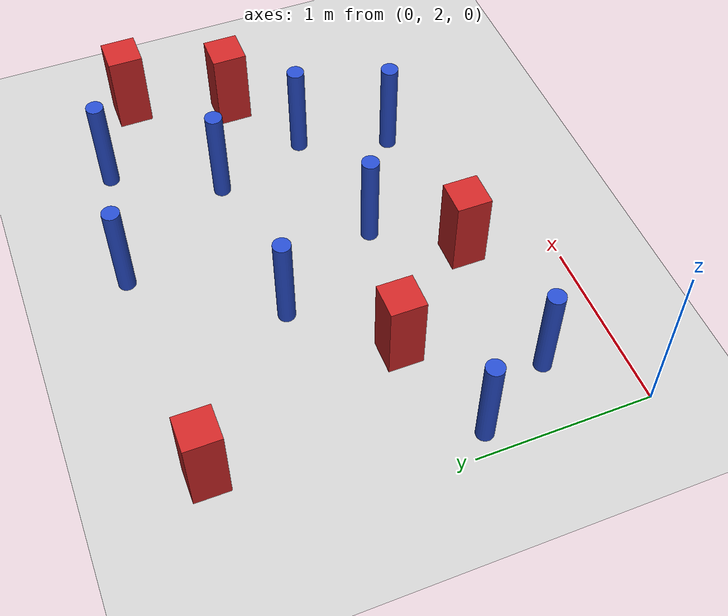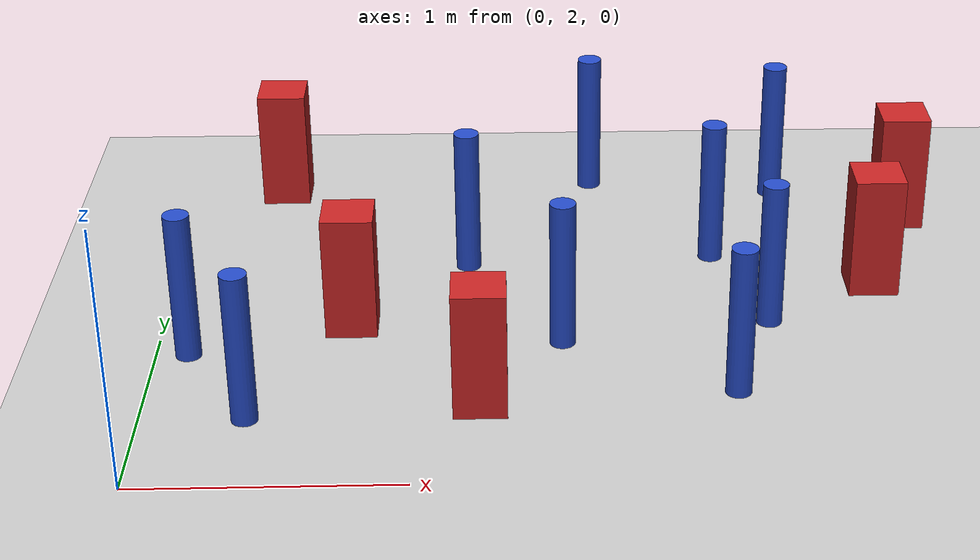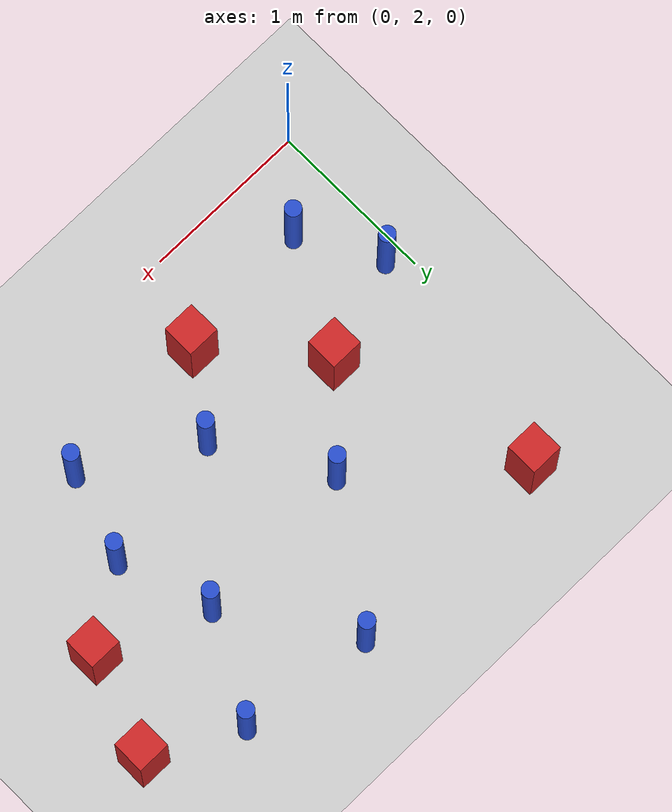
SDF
<sdf version="1.6">
 <world name="default">
  <model name="ground_plane">
   <static>1</static>
   <link name="link">
    <collision name="collision">
     <geometry><plane><normal>0 0 1</normal><size>100 100</size></plane></geometry>
     <surface><friction><ode><mu>100</mu><mu2>50</mu2></ode></friction></surface>
    </collision>
    <visual name="visual">
     <cast_shadows>0</cast_shadows>
     <geometry><plane><normal>0 0 1</normal><size>100 100</size></plane></geometry>
     <material>
      <ambient>1.0 1.0 1.0 1.0</ambient>
      <diffuse>0.8 0.8 0.8 1.0</diffuse>
      <specular>0.01 0.01 0.01 1.000000</specular>
     </material>
    </visual>
   </link>
  </model>
  <model name="square_post_obstacle5">
   <static>true</static>
   <pose>0.736631532644 3.10345573629 1.91545236811e-07 -7.35059704564e-06 1.12565212e-07 2.39332434364e-05</pose>
   <link name="link">
    <pose>0 0 0.25 0 -0 0</pose>
    <inertial>
     <mass>100</mass>
     <inertia>
      <ixx>0.166667</ixx>
      <ixy>0</ixy>
      <ixz>0</ixz>
      <iyy>0.166667</iyy>
      <iyz>0</iyz>
      <izz>0.166667</izz>
     </inertia>
    </inertial>
    <collision name="collision"><geometry><box><size>.2 .2 .5</size></box></geometry></collision>
    <visual name="visual">
     <geometry><box><size>.2 .2 .5</size></box></geometry>
     <material>
      <script><name>Gazebo/Red</name><uri>file://media/materials/scripts/gazebo.material</uri></script>
     </material>
    </visual>
   </link>
  </model>
  <model name="pole_obstacle10">
   <static>true</static>
   <pose>1.70992750119 4.33603272903 7.38925637345e-09 -8.47170692799e-08 1.24976765033e-08 -1.74513093018e-07</pose>
   <link name="link">
    <pose>0 0 0.3 0 -0 0</pose>
    <inertial>
     <mass>1</mass>
     <inertia><ixx>0.145833</ixx><ixy>0</ixy><ixz>0</ixz><iyy>0.145833</iyy><iyz>0</iyz><izz>0.125</izz></inertia>
    </inertial>
    <collision name="collision">
     <geometry><cylinder><radius>0.05</radius><length>.6</length></cylinder></geometry>
    </collision>
    <visual name="visual">
     <geometry><cylinder><radius>0.05</radius><length>.6</length></cylinder></geometry>
     <material>
      <script><name>Gazebo/Blue</name><uri>file://media/materials/scripts/gazebo.material</uri></script>
     </material>
    </visual>
   </link>
  </model>
  <model name="pole_obstacle46">
   <static>true</static>
   <pose>1.55291161137 2.94590011978 7.38925637345e-09 -8.47170692799e-08 1.24976765053e-08 -1.74513093017e-07</pose>
   <link name="link">
    <pose>0 0 0.3 0 -0 0</pose>
    <inertial>
     <mass>1</mass>
     <inertia><ixx>0.145833</ixx><ixy>0</ixy><ixz>0</ixz><iyy>0.145833</iyy><iyz>0</iyz><izz>0.125</izz></inertia>
    </inertial>
    <collision name="collision">
     <geometry><cylinder><radius>0.05</radius><length>.6</length></cylinder></geometry>
    </collision>
    <visual name="visual">
     <geometry><cylinder><radius>0.05</radius><length>.6</length></cylinder></geometry>
     <material>
      <script><name>Gazebo/Blue</name><uri>file://media/materials/scripts/gazebo.material</uri></script>
     </material>
    </visual>
   </link>
  </model>
  <model name="square_post_obstacle70">
   <static>true</static>
   <pose>2.8143383901 3.38059318408 1.91545236811e-07 -7.35059704564e-06 1.12565212e-07 2.39332434364e-05</pose>
   <link name="link">
    <pose>0 0 0.25 0 -0 0</pose>
    <inertial>
     <mass>100</mass>
     <inertia>
      <ixx>0.166667</ixx>
      <ixy>0</ixy>
      <ixz>0</ixz>
      <iyy>0.166667</iyy>
      <iyz>0</iyz>
      <izz>0.166667</izz>
     </inertia>
    </inertial>
    <collision name="collision"><geometry><box><size>.2 .2 .5</size></box></geometry></collision>
    <visual name="visual">
     <geometry><box><size>.2 .2 .5</size></box></geometry>
     <material>
      <script><name>Gazebo/Red</name><uri>file://media/materials/scripts/gazebo.material</uri></script>
     </material>
    </visual>
   </link>
  </model>
  <model name="square_post_obstacle74">
   <static>true</static>
   <pose>3.01948055152 3.96242440324 1.91545236811e-07 -7.35059704564e-06 1.12565212e-07 2.39332434364e-05</pose>
   <link name="link">
    <pose>0 0 0.25 0 -0 0</pose>
    <inertial>
     <mass>100</mass>
     <inertia>
      <ixx>0.166667</ixx>
      <ixy>0</ixy>
      <ixz>0</ixz>
      <iyy>0.166667</iyy>
      <iyz>0</iyz>
      <izz>0.166667</izz>
     </inertia>
    </inertial>
    <collision name="collision"><geometry><box><size>.2 .2 .5</size></box></geometry></collision>
    <visual name="visual">
     <geometry><box><size>.2 .2 .5</size></box></geometry>
     <material>
      <script><name>Gazebo/Red</name><uri>file://media/materials/scripts/gazebo.material</uri></script>
     </material>
    </visual>
   </link>
  </model>
  <model name="square_post_obstacle105">
   <static>true</static>
   <pose>1.23904430566 2.5087768517 1.91545236811e-07 -7.35059704564e-06 1.12565212e-07 2.39332434364e-05</pose>
   <link name="link">
    <pose>0 0 0.25 0 -0 0</pose>
    <inertial>
     <mass>100</mass>
     <inertia>
      <ixx>0.166667</ixx>
      <ixy>0</ixy>
      <ixz>0</ixz>
      <iyy>0.166667</iyy>
      <iyz>0</iyz>
      <izz>0.166667</izz>
     </inertia>
    </inertial>
    <collision name="collision"><geometry><box><size>.2 .2 .5</size></box></geometry></collision>
    <visual name="visual">
     <geometry><box><size>.2 .2 .5</size></box></geometry>
     <material>
      <script><name>Gazebo/Red</name><uri>file://media/materials/scripts/gazebo.material</uri></script>
     </material>
    </visual>
   </link>
  </model>
  <model name="square_post_obstacle124">
   <static>true</static>
   <pose>0.38210762863 4.27593714718 1.91545236811e-07 -7.35059704564e-06 1.12565212e-07 2.39332434364e-05</pose>
   <link name="link">
    <pose>0 0 0.25 0 -0 0</pose>
    <inertial>
     <mass>100</mass>
     <inertia>
      <ixx>0.166667</ixx>
      <ixy>0</ixy>
      <ixz>0</ixz>
      <iyy>0.166667</iyy>
      <iyz>0</iyz>
      <izz>0.166667</izz>
     </inertia>
    </inertial>
    <collision name="collision"><geometry><box><size>.2 .2 .5</size></box></geometry></collision>
    <visual name="visual">
     <geometry><box><size>.2 .2 .5</size></box></geometry>
     <material>
      <script><name>Gazebo/Red</name><uri>file://media/materials/scripts/gazebo.material</uri></script>
     </material>
    </visual>
   </link>
  </model>
  <model name="pole_obstacle148">
   <static>true</static>
   <pose>2.19397522058 2.56956290892 7.38925637345e-09 -8.47170692798e-08 1.24976764939e-08 -1.74513093025e-07</pose>
   <link name="link">
    <pose>0 0 0.3 0 -0 0</pose>
    <inertial>
     <mass>1</mass>
     <inertia><ixx>0.145833</ixx><ixy>0</ixy><ixz>0</ixz><iyy>0.145833</iyy><iyz>0</iyz><izz>0.125</izz></inertia>
    </inertial>
    <collision name="collision">
     <geometry><cylinder><radius>0.05</radius><length>.6</length></cylinder></geometry>
    </collision>
    <visual name="visual">
     <geometry><cylinder><radius>0.05</radius><length>.6</length></cylinder></geometry>
     <material>
      <script><name>Gazebo/Blue</name><uri>file://media/materials/scripts/gazebo.material</uri></script>
     </material>
    </visual>
   </link>
  </model>
  <model name="pole_obstacle155">
   <static>true</static>
   <pose>1.18448545803 3.57925829598 7.38925637345e-09 -8.47170692799e-08 1.24976765053e-08 -1.74513093017e-07</pose>
   <link name="link">
    <pose>0 0 0.3 0 -0 0</pose>
    <inertial>
     <mass>1</mass>
     <inertia><ixx>0.145833</ixx><ixy>0</ixy><ixz>0</ixz><iyy>0.145833</iyy><iyz>0</iyz><izz>0.125</izz></inertia>
    </inertial>
    <collision name="collision">
     <geometry><cylinder><radius>0.05</radius><length>.6</length></cylinder></geometry>
    </collision>
    <visual name="visual">
     <geometry><cylinder><radius>0.05</radius><length>.6</length></cylinder></geometry>
     <material>
      <script><name>Gazebo/Blue</name><uri>file://media/materials/scripts/gazebo.material</uri></script>
     </material>
    </visual>
   </link>
  </model>
  <model name="pole_obstacle220">
   <static>true</static>
   <pose>2.1866387212 3.63370213755 7.38925637345e-09 -8.47170692798e-08 1.24976764939e-08 -1.74513093025e-07</pose>
   <link name="link">
    <pose>0 0 0.3 0 -0 0</pose>
    <inertial>
     <mass>1</mass>
     <inertia><ixx>0.145833</ixx><ixy>0</ixy><ixz>0</ixz><iyy>0.145833</iyy><iyz>0</iyz><izz>0.125</izz></inertia>
    </inertial>
    <collision name="collision">
     <geometry><cylinder><radius>0.05</radius><length>.6</length></cylinder></geometry>
    </collision>
    <visual name="visual">
     <geometry><cylinder><radius>0.05</radius><length>.6</length></cylinder></geometry>
     <material>
      <script><name>Gazebo/Blue</name><uri>file://media/materials/scripts/gazebo.material</uri></script>
     </material>
    </visual>
   </link>
  </model>
  <model name="pole_obstacle232">
   <static>true</static>
   <pose>0.386239009575 2.42954002078 7.38925637345e-09 -8.47170692793e-08 1.24976764469e-08 -1.74513093038e-07</pose>
   <link name="link">
    <pose>0 0 0.3 0 -0 0</pose>
    <inertial>
     <mass>1</mass>
     <inertia><ixx>0.145833</ixx><ixy>0</ixy><ixz>0</ixz><iyy>0.145833</iyy><iyz>0</iyz><izz>0.125</izz></inertia>
    </inertial>
    <collision name="collision">
     <geometry><cylinder><radius>0.05</radius><length>.6</length></cylinder></geometry>
    </collision>
    <visual name="visual">
     <geometry><cylinder><radius>0.05</radius><length>.6</length></cylinder></geometry>
     <material>
      <script><name>Gazebo/Blue</name><uri>file://media/materials/scripts/gazebo.material</uri></script>
     </material>
    </visual>
   </link>
  </model>
  <model name="pole_obstacle233">
   <static>true</static>
   <pose>2.36867000957 3.08467002078 7.38925637345e-09 -8.47170692798e-08 1.24976764939e-08 -1.74513093025e-07</pose>
   <link name="link">
    <pose>0 0 0.3 0 -0 0</pose>
    <inertial>
     <mass>1</mass>
     <inertia><ixx>0.145833</ixx><ixy>0</ixy><ixz>0</ixz><iyy>0.145833</iyy><iyz>0</iyz><izz>0.125</izz></inertia>
    </inertial>
    <collision name="collision">
     <geometry><cylinder><radius>0.05</radius><length>.6</length></cylinder></geometry>
    </collision>
    <visual name="visual">
     <geometry><cylinder><radius>0.05</radius><length>.6</length></cylinder></geometry>
     <material>
      <script><name>Gazebo/Blue</name><uri>file://media/materials/scripts/gazebo.material</uri></script>
     </material>
    </visual>
   </link>
  </model>
  <model name="pole_obstacle235">
   <static>true</static>
   <pose>0.123707009575 2.89027002078 7.38925637345e-09 -8.47170692799e-08 1.24976765083e-08 -1.74513093017e-07</pose>
   <link name="link">
    <pose>0 0 0.3 0 -0 0</pose>
    <inertial>
     <mass>1</mass>
     <inertia><ixx>0.145833</ixx><ixy>0</ixy><ixz>0</ixz><iyy>0.145833</iyy><iyz>0</iyz><izz>0.125</izz></inertia>
    </inertial>
    <collision name="collision">
     <geometry><cylinder><radius>0.05</radius><length>.6</length></cylinder></geometry>
    </collision>
    <visual name="visual">
     <geometry><cylinder><radius>0.05</radius><length>.6</length></cylinder></geometry>
     <material>
      <script><name>Gazebo/Blue</name><uri>file://media/materials/scripts/gazebo.material</uri></script>
     </material>
    </visual>
   </link>
  </model>
  <model name="pole_obstacle237">
   <static>true</static>
   <pose>2.50551000957 4.23032002078 7.38925637345e-09 -8.47170692798e-08 1.24976765033e-08 -1.74513093019e-07</pose>
   <link name="link">
    <pose>0 0 0.3 0 -0 0</pose>
    <inertial>
     <mass>1</mass>
     <inertia><ixx>0.145833</ixx><ixy>0</ixy><ixz>0</ixz><iyy>0.145833</iyy><iyz>0</iyz><izz>0.125</izz></inertia>
    </inertial>
    <collision name="collision">
     <geometry><cylinder><radius>0.05</radius><length>.6</length></cylinder></geometry>
    </collision>
    <visual name="visual">
     <geometry><cylinder><radius>0.05</radius><length>.6</length></cylinder></geometry>
     <material>
      <script><name>Gazebo/Blue</name><uri>file://media/materials/scripts/gazebo.material</uri></script>
     </material>
    </visual>
   </link>
  </model>
 </world>
</sdf>
